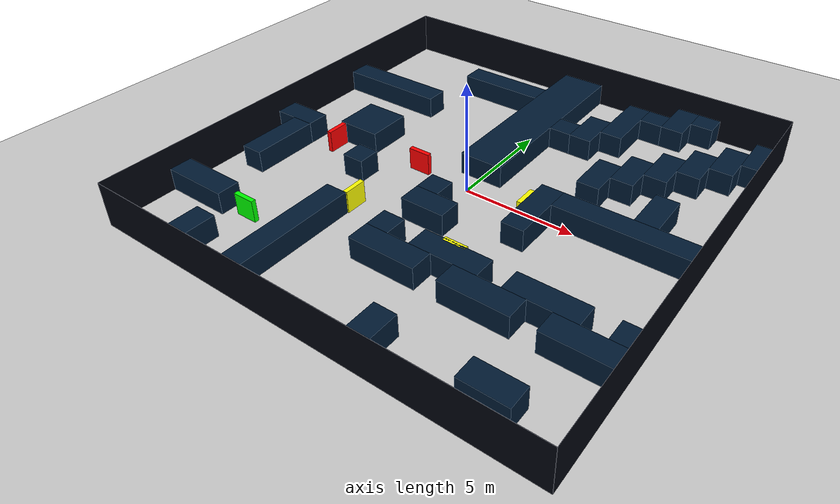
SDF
<sdf version='1.10'>
  <world name='maze'>
    <physics name='1ms' type='ignored'>
      <max_step_size>0.0030000000000000001</max_step_size>
      <real_time_factor>1</real_time_factor>
      <real_time_update_rate>1000</real_time_update_rate>
    </physics>
    <plugin name='ignition::gazebo::systems::Physics' filename='ignition-gazebo-physics-system'/>
    <plugin name='ignition::gazebo::systems::UserCommands' filename='ignition-gazebo-user-commands-system'/>
    <plugin name='ignition::gazebo::systems::SceneBroadcaster' filename='ignition-gazebo-scene-broadcaster-system'/>
    <plugin name='ignition::gazebo::systems::Contact' filename='ignition-gazebo-contact-system'/>

    <gravity>0 0 -9.8000000000000007</gravity>
    <magnetic_field>6.0000000000000002e-06 2.3e-05 -4.1999999999999998e-05</magnetic_field>
    <atmosphere type='adiabatic'/>
    <scene>
      <ambient>0.400000006 0.400000006 0.400000006 1</ambient>
      <background>0.699999988 0.699999988 0.699999988 1</background>
      <shadows>true</shadows>
    </scene>
    <model name='ground_plane'>
      <static>true</static>
      <link name='link'>
        <collision name='collision'>
          <geometry>
            <plane>
              <normal>0 0 1</normal>
              <size>100 100</size>
            </plane>
          </geometry>
          <surface>
            <friction>
              <ode/>
            </friction>
            <bounce/>
            <contact/>
          </surface>
        </collision>
        <visual name='visual'>
          <geometry>
            <plane>
              <normal>0 0 1</normal>
              <size>100 100</size>
            </plane>
          </geometry>
          <material>
            <ambient>0.800000012 0.800000012 0.800000012 1</ambient>
            <diffuse>0.800000012 0.800000012 0.800000012 1</diffuse>
            <specular>0.800000012 0.800000012 0.800000012 1</specular>
          </material>
        </visual>
        <pose>0 0 0 0 0 0</pose>
        <inertial>
          <pose>0 0 0 0 0 0</pose>
          <mass>1</mass>
          <inertia>
            <ixx>1</ixx>
            <ixy>0</ixy>
            <ixz>0</ixz>
            <iyy>1</iyy>
            <iyz>0</iyz>
            <izz>1</izz>
          </inertia>
        </inertial>
        <enable_wind>false</enable_wind>
      </link>
      <pose>0 0 0 0 0 0</pose>
      <self_collide>false</self_collide>
    </model>
    <model name='border'>
      <pose>0 0 1 0 0 0</pose>
      <static>true</static>
      <link name='wall1'>
        <pose>-10.005000000000001 0 0 0 0 0</pose>
        <collision name='wall1_collision'>
          <geometry>
            <box>
              <size>0.01 20 2</size>
            </box>
          </geometry>
          <surface>
            <friction>
              <ode/>
            </friction>
            <bounce/>
            <contact/>
          </surface>
        </collision>
        <visual name='wall1_visual'>
          <geometry>
            <box>
              <size>0.01 20 2</size>
            </box>
          </geometry>
          <material>
            <ambient>0.100000001 0.100000001 0.100000001 1</ambient>
            <diffuse>0 0.00999999978 0.0500000007 1</diffuse>
            <specular>0 0.00999999978 0.0500000007 1</specular>
          </material>
        </visual>
        <inertial>
          <pose>0 0 0 0 0 0</pose>
          <mass>1</mass>
          <inertia>
            <ixx>1</ixx>
            <ixy>0</ixy>
            <ixz>0</ixz>
            <iyy>1</iyy>
            <iyz>0</iyz>
            <izz>1</izz>
          </inertia>
        </inertial>
        <enable_wind>false</enable_wind>
        <static>true</static>
      </link>
      <link name='wall2'>
        <pose>10.005000000000001 0 0 0 0 0</pose>
        <collision name='wall2_collision'>
          <geometry>
            <box>
              <size>0.01 20 2</size>
            </box>
          </geometry>
          <surface>
            <friction>
              <ode/>
            </friction>
            <bounce/>
            <contact/>
          </surface>
        </collision>
        <visual name='wall2_visual'>
          <geometry>
            <box>
              <size>0.01 20 2</size>
            </box>
          </geometry>
          <material>
            <ambient>0.100000001 0.100000001 0.100000001 1</ambient>
            <diffuse>0 0.00999999978 0.0500000007 1</diffuse>
            <specular>0 0.00999999978 0.0500000007 1</specular>
          </material>
        </visual>
        <inertial>
          <pose>0 0 0 0 0 0</pose>
          <mass>1</mass>
          <inertia>
            <ixx>1</ixx>
            <ixy>0</ixy>
            <ixz>0</ixz>
            <iyy>1</iyy>
            <iyz>0</iyz>
            <izz>1</izz>
          </inertia>
        </inertial>
        <enable_wind>false</enable_wind>
        <static>true</static>
      </link>
      <link name='wall3'>
        <pose>0 10.005000000000001 0 0 0 0</pose>
        <collision name='wall3_collision'>
          <geometry>
            <box>
              <size>20 0.01 2</size>
            </box>
          </geometry>
          <surface>
            <friction>
              <ode/>
            </friction>
            <bounce/>
            <contact/>
          </surface>
        </collision>
        <visual name='wall3_visual'>
          <geometry>
            <box>
              <size>20 0.01 2</size>
            </box>
          </geometry>
          <material>
            <ambient>0.100000001 0.100000001 0.100000001 1</ambient>
            <diffuse>0 0.00999999978 0.0500000007 1</diffuse>
            <specular>0 0.00999999978 0.0500000007 1</specular>
          </material>
        </visual>
        <inertial>
          <pose>0 0 0 0 0 0</pose>
          <mass>1</mass>
          <inertia>
            <ixx>1</ixx>
            <ixy>0</ixy>
            <ixz>0</ixz>
            <iyy>1</iyy>
            <iyz>0</iyz>
            <izz>1</izz>
          </inertia>
        </inertial>
        <enable_wind>false</enable_wind>
        <static>true</static>
      </link>
      <link name='wall4'>
        <pose>0 -10.005000000000001 0 0 0 0</pose>
        <collision name='wall4_collision'>
          <geometry>
            <box>
              <size>20 0.01 2</size>
            </box>
          </geometry>
          <surface>
            <friction>
              <ode/>
            </friction>
            <bounce/>
            <contact/>
          </surface>
          <material>
            <ambient>0.1 0.1 0.1 1</ambient>
            <diffuse>0 0.01 0.05 1</diffuse>
            <specular>0 0.01 0.05 1</specular>
          </material>
        </collision>
        <visual name='wall4_visual'>
          <geometry>
            <box>
              <size>20 0.01 2</size>
            </box>
          </geometry>
          <material>
            <ambient>0.100000001 0.100000001 0.100000001 1</ambient>
            <diffuse>0 0.00999999978 0.0500000007 1</diffuse>
            <specular>0 0.00999999978 0.0500000007 1</specular>
          </material>
        </visual>
        <inertial>
          <pose>0 0 0 0 0 0</pose>
          <mass>1</mass>
          <inertia>
            <ixx>1</ixx>
            <ixy>0</ixy>
            <ixz>0</ixz>
            <iyy>1</iyy>
            <iyz>0</iyz>
            <izz>1</izz>
          </inertia>
        </inertial>
        <enable_wind>false</enable_wind>
        <static>true</static>
      </link>
      <self_collide>false</self_collide>
    </model>
    <model name='obstacles'>
      <pose>0 0 0.5 0 0 0</pose>
      <static>true</static>
      <link name='wall1'>
        <pose>-6.5 -9 0 0 0 0</pose>
        <collision name='wall1_collision'>
          <geometry>
            <box>
              <size>1 2 1</size>
            </box>
          </geometry>
          <surface>
            <friction>
              <ode/>
            </friction>
            <bounce/>
            <contact/>
          </surface>
        </collision>
        <visual name='wall1_visual'>
          <geometry>
            <box>
              <size>1 2 1</size>
            </box>
          </geometry>
          <material>
            <ambient>0.100000001 0.100000001 0.100000001 1</ambient>
            <diffuse>0 0.100000001 0.200000003 1</diffuse>
            <specular>0 0.00999999978 0.0500000007 1</specular>
          </material>
        </visual>
        <inertial>
          <pose>0 0 0 0 0 0</pose>
          <mass>1</mass>
          <inertia>
            <ixx>1</ixx>
            <ixy>0</ixy>
            <ixz>0</ixz>
            <iyy>1</iyy>
            <iyz>0</iyz>
            <izz>1</izz>
          </inertia>
        </inertial>
        <enable_wind>false</enable_wind>
        <static>true</static>
      </link>
      <link name='wall2'>
        <pose>-8.5 -6.5 0 0 0 0</pose>
        <collision name='wall2_collision'>
          <geometry>
            <box>
              <size>3 1 1</size>
            </box>
          </geometry>
          <surface>
            <friction>
              <ode/>
            </friction>
            <bounce/>
            <contact/>
          </surface>
        </collision>
        <visual name='wall2_visual'>
          <geometry>
            <box>
              <size>3 1 1</size>
            </box>
          </geometry>
          <material>
            <ambient>0.100000001 0.100000001 0.100000001 1</ambient>
            <diffuse>0 0.100000001 0.200000003 1</diffuse>
            <specular>0 0.00999999978 0.0500000007 1</specular>
          </material>
        </visual>
        <inertial>
          <pose>0 0 0 0 0 0</pose>
          <mass>1</mass>
          <inertia>
            <ixx>1</ixx>
            <ixy>0</ixy>
            <ixz>0</ixz>
            <iyy>1</iyy>
            <iyz>0</iyz>
            <izz>1</izz>
          </inertia>
        </inertial>
        <enable_wind>false</enable_wind>
        <static>true</static>
      </link>
      <link name='wall3'>
        <pose>-3.5 -7 0 0 0 0</pose>
        <collision name='wall3_collision'>
          <geometry>
            <box>
              <size>1 6 1</size>
            </box>
          </geometry>
          <surface>
            <friction>
              <ode/>
            </friction>
            <bounce/>
            <contact/>
          </surface>
        </collision>
        <visual name='wall3_visual'>
          <geometry>
            <box>
              <size>1 6 1</size>
            </box>
          </geometry>
          <material>
            <ambient>0.100000001 0.100000001 0.100000001 1</ambient>
            <diffuse>0 0.100000001 0.200000003 1</diffuse>
            <specular>0 0.00999999978 0.0500000007 1</specular>
          </material>
        </visual>
        <inertial>
          <pose>0 0 0 0 0 0</pose>
          <mass>1</mass>
          <inertia>
            <ixx>1</ixx>
            <ixy>0</ixy>
            <ixz>0</ixz>
            <iyy>1</iyy>
            <iyz>0</iyz>
            <izz>1</izz>
          </inertia>
        </inertial>
        <enable_wind>false</enable_wind>
        <static>true</static>
      </link>
      <link name='wall4'>
        <pose>2.5 -9 0 0 0 0</pose>
        <collision name='wall4_collision'>
          <geometry>
            <box>
              <size>1 2 1</size>
            </box>
          </geometry>
          <surface>
            <friction>
              <ode/>
            </friction>
            <bounce/>
            <contact/>
          </surface>
        </collision>
        <visual name='wall4_visual'>
          <geometry>
            <box>
              <size>1 2 1</size>
            </box>
          </geometry>
          <material>
            <ambient>0.100000001 0.100000001 0.100000001 1</ambient>
            <diffuse>0 0.100000001 0.200000003 1</diffuse>
            <specular>0 0.00999999978 0.0500000007 1</specular>
          </material>
        </visual>
        <inertial>
          <pose>0 0 0 0 0 0</pose>
          <mass>1</mass>
          <inertia>
            <ixx>1</ixx>
            <ixy>0</ixy>
            <ixz>0</ixz>
            <iyy>1</iyy>
            <iyz>0</iyz>
            <izz>1</izz>
          </inertia>
        </inertial>
        <enable_wind>false</enable_wind>
        <static>true</static>
      </link>
      <link name='wall5'>
        <pose>7 -8.5 0 0 0 0</pose>
        <collision name='wall5_collision'>
          <geometry>
            <box>
              <size>2 1 1</size>
            </box>
          </geometry>
          <surface>
            <friction>
              <ode/>
            </friction>
            <bounce/>
            <contact/>
          </surface>
        </collision>
        <visual name='wall5_visual'>
          <geometry>
            <box>
              <size>2 1 1</size>
            </box>
          </geometry>
          <material>
            <ambient>0.100000001 0.100000001 0.100000001 1</ambient>
            <diffuse>0 0.100000001 0.200000003 1</diffuse>
            <specular>0 0.00999999978 0.0500000007 1</specular>
          </material>
        </visual>
        <inertial>
          <pose>0 0 0 0 0 0</pose>
          <mass>1</mass>
          <inertia>
            <ixx>1</ixx>
            <ixy>0</ixy>
            <ixz>0</ixz>
            <iyy>1</iyy>
            <iyz>0</iyz>
            <izz>1</izz>
          </inertia>
        </inertial>
        <enable_wind>false</enable_wind>
        <static>true</static>
      </link>
      <link name='wall6'>
        <pose>-9 -0.5 0 0 0 0</pose>
        <collision name='wall6_collision'>
          <geometry>
            <box>
              <size>2 1 1</size>
            </box>
          </geometry>
          <surface>
            <friction>
              <ode/>
            </friction>
            <bounce/>
            <contact/>
          </surface>
        </collision>
        <visual name='wall6_visual'>
          <geometry>
            <box>
              <size>2 1 1</size>
            </box>
          </geometry>
          <material>
            <ambient>0.100000001 0.100000001 0.100000001 1</ambient>
            <diffuse>0 0.100000001 0.200000003 1</diffuse>
            <specular>0 0.00999999978 0.0500000007 1</specular>
          </material>
        </visual>
        <inertial>
          <pose>0 0 0 0 0 0</pose>
          <mass>1</mass>
          <inertia>
            <ixx>1</ixx>
            <ixy>0</ixy>
            <ixz>0</ixz>
            <iyy>1</iyy>
            <iyz>0</iyz>
            <izz>1</izz>
          </inertia>
        </inertial>
        <enable_wind>false</enable_wind>
        <static>true</static>
      </link>
      <link name='wall7'>
        <pose>-8.5 -2.5 0 0 0 0</pose>
        <collision name='wall7_collision'>
          <geometry>
            <box>
              <size>1 3 1</size>
            </box>
          </geometry>
          <surface>
            <friction>
              <ode/>
            </friction>
            <bounce/>
            <contact/>
          </surface>
        </collision>
        <visual name='wall7_visual'>
          <geometry>
            <box>
              <size>1 3 1</size>
            </box>
          </geometry>
          <material>
            <ambient>0.100000001 0.100000001 0.100000001 1</ambient>
            <diffuse>0 0.100000001 0.200000003 1</diffuse>
            <specular>0 0.00999999978 0.0500000007 1</specular>
          </material>
        </visual>
        <inertial>
          <pose>0 0 0 0 0 0</pose>
          <mass>1</mass>
          <inertia>
            <ixx>1</ixx>
            <ixy>0</ixy>
            <ixz>0</ixz>
            <iyy>1</iyy>
            <iyz>0</iyz>
            <izz>1</izz>
          </inertia>
        </inertial>
        <enable_wind>false</enable_wind>
        <static>true</static>
      </link>
      <link name='wall8'>
        <pose>-4.5 -1.5 0 0 0 0</pose>
        <collision name='wall8_collision'>
          <geometry>
            <box>
              <size>1 1 1</size>
            </box>
          </geometry>
          <surface>
            <friction>
              <ode/>
            </friction>
            <bounce/>
            <contact/>
          </surface>
        </collision>
        <visual name='wall8_visual'>
          <geometry>
            <box>
              <size>1 1 1</size>
            </box>
          </geometry>
          <material>
            <ambient>0.100000001 0.100000001 0.100000001 1</ambient>
            <diffuse>0 0.100000001 0.200000003 1</diffuse>
            <specular>0 0.00999999978 0.0500000007 1</specular>
          </material>
        </visual>
        <inertial>
          <pose>0 0 0 0 0 0</pose>
          <mass>1</mass>
          <inertia>
            <ixx>1</ixx>
            <ixy>0</ixy>
            <ixz>0</ixz>
            <iyy>1</iyy>
            <iyz>0</iyz>
            <izz>1</izz>
          </inertia>
        </inertial>
        <enable_wind>false</enable_wind>
        <static>true</static>
      </link>
      <link name='wall9'>
        <pose>-6 1 0 0 0 0</pose>
        <collision name='wall9_collision'>
          <geometry>
            <box>
              <size>2 2 1</size>
            </box>
          </geometry>
          <surface>
            <friction>
              <ode/>
            </friction>
            <bounce/>
            <contact/>
          </surface>
        </collision>
        <visual name='wall9_visual'>
          <geometry>
            <box>
              <size>2 2 1</size>
            </box>
          </geometry>
          <material>
            <ambient>0.100000001 0.100000001 0.100000001 1</ambient>
            <diffuse>0 0.100000001 0.200000003 1</diffuse>
            <specular>0 0.00999999978 0.0500000007 1</specular>
          </material>
        </visual>
        <inertial>
          <pose>0 0 0 0 0 0</pose>
          <mass>1</mass>
          <inertia>
            <ixx>1</ixx>
            <ixy>0</ixy>
            <ixz>0</ixz>
            <iyy>1</iyy>
            <iyz>0</iyz>
            <izz>1</izz>
          </inertia>
        </inertial>
        <enable_wind>false</enable_wind>
        <static>true</static>
      </link>
      <link name='wall10'>
        <pose>-7.5 4.5 0 0 0 0</pose>
        <collision name='wall10_collision'>
          <geometry>
            <box>
              <size>5 1 1</size>
            </box>
          </geometry>
          <surface>
            <friction>
              <ode/>
            </friction>
            <bounce/>
            <contact/>
          </surface>
        </collision>
        <visual name='wall10_visual'>
          <geometry>
            <box>
              <size>5 1 1</size>
            </box>
          </geometry>
          <material>
            <ambient>0.100000001 0.100000001 0.100000001 1</ambient>
            <diffuse>0 0.100000001 0.200000003 1</diffuse>
            <specular>0 0.00999999978 0.0500000007 1</specular>
          </material>
        </visual>
        <inertial>
          <pose>0 0 0 0 0 0</pose>
          <mass>1</mass>
          <inertia>
            <ixx>1</ixx>
            <ixy>0</ixy>
            <ixz>0</ixz>
            <iyy>1</iyy>
            <iyz>0</iyz>
            <izz>1</izz>
          </inertia>
        </inertial>
        <enable_wind>false</enable_wind>
        <static>true</static>
      </link>
      <link name='wall11'>
        <pose>-3 7.5 0 0 0 0</pose>
        <collision name='wall11_collision'>
          <geometry>
            <box>
              <size>4 1 1</size>
            </box>
          </geometry>
          <surface>
            <friction>
              <ode/>
            </friction>
            <bounce/>
            <contact/>
          </surface>
        </collision>
        <visual name='wall11_visual'>
          <geometry>
            <box>
              <size>4 1 1</size>
            </box>
          </geometry>
          <material>
            <ambient>0.100000001 0.100000001 0.100000001 1</ambient>
            <diffuse>0 0.100000001 0.200000003 1</diffuse>
            <specular>0 0.00999999978 0.0500000007 1</specular>
          </material>
        </visual>
        <inertial>
          <pose>0 0 0 0 0 0</pose>
          <mass>1</mass>
          <inertia>
            <ixx>1</ixx>
            <ixy>0</ixy>
            <ixz>0</ixz>
            <iyy>1</iyy>
            <iyz>0</iyz>
            <izz>1</izz>
          </inertia>
        </inertial>
        <enable_wind>false</enable_wind>
        <static>true</static>
      </link>
      <link name='wall12'>
        <pose>0 5.5 0 0 0 0</pose>
        <collision name='wall12_collision'>
          <geometry>
            <box>
              <size>2 9 1</size>
            </box>
          </geometry>
          <surface>
            <friction>
              <ode/>
            </friction>
            <bounce/>
            <contact/>
          </surface>
        </collision>
        <visual name='wall12_visual'>
          <geometry>
            <box>
              <size>2 9 1</size>
            </box>
          </geometry>
          <material>
            <ambient>0.100000001 0.100000001 0.100000001 1</ambient>
            <diffuse>0 0.100000001 0.200000003 1</diffuse>
            <specular>0 0.00999999978 0.0500000007 1</specular>
          </material>
        </visual>
        <inertial>
          <pose>0 0 0 0 0 0</pose>
          <mass>1</mass>
          <inertia>
            <ixx>1</ixx>
            <ixy>0</ixy>
            <ixz>0</ixz>
            <iyy>1</iyy>
            <iyz>0</iyz>
            <izz>1</izz>
          </inertia>
        </inertial>
        <enable_wind>false</enable_wind>
        <static>true</static>
      </link>
      <link name='wall13'>
        <pose>0 -2.5 0 0 0 0</pose>
        <collision name='wall13_collision'>
          <geometry>
            <box>
              <size>2 1 1</size>
            </box>
          </geometry>
          <surface>
            <friction>
              <ode/>
            </friction>
            <bounce/>
            <contact/>
          </surface>
        </collision>
        <visual name='wall13_visual'>
          <geometry>
            <box>
              <size>2 1 1</size>
            </box>
          </geometry>
          <material>
            <ambient>0.100000001 0.100000001 0.100000001 1</ambient>
            <diffuse>0 0.100000001 0.200000003 1</diffuse>
            <specular>0 0.00999999978 0.0500000007 1</specular>
          </material>
        </visual>
        <inertial>
          <pose>0 0 0 0 0 0</pose>
          <mass>1</mass>
          <inertia>
            <ixx>1</ixx>
            <ixy>0</ixy>
            <ixz>0</ixz>
            <iyy>1</iyy>
            <iyz>0</iyz>
            <izz>1</izz>
          </inertia>
        </inertial>
        <enable_wind>false</enable_wind>
        <static>true</static>
      </link>
      <link name='wall14'>
        <pose>-0.5 -1.5 0 0 0 0</pose>
        <collision name='wall14_collision'>
          <geometry>
            <box>
              <size>1 1 1</size>
            </box>
          </geometry>
          <surface>
            <friction>
              <ode/>
            </friction>
            <bounce/>
            <contact/>
          </surface>
        </collision>
        <visual name='wall14_visual'>
          <geometry>
            <box>
              <size>1 1 1</size>
            </box>
          </geometry>
          <material>
            <ambient>0.100000001 0.100000001 0.100000001 1</ambient>
            <diffuse>0 0.100000001 0.200000003 1</diffuse>
            <specular>0 0.00999999978 0.0500000007 1</specular>
          </material>
        </visual>
        <inertial>
          <pose>0 0 0 0 0 0</pose>
          <mass>1</mass>
          <inertia>
            <ixx>1</ixx>
            <ixy>0</ixy>
            <ixz>0</ixz>
            <iyy>1</iyy>
            <iyz>0</iyz>
            <izz>1</izz>
          </inertia>
        </inertial>
        <enable_wind>false</enable_wind>
        <static>true</static>
      </link>
      <link name='wall15'>
        <pose>-0.5 -4.5 0 0 0 0</pose>
        <collision name='wall15_collision'>
          <geometry>
            <box>
              <size>1 1 1</size>
            </box>
          </geometry>
          <surface>
            <friction>
              <ode/>
            </friction>
            <bounce/>
            <contact/>
          </surface>
        </collision>
        <visual name='wall15_visual'>
          <geometry>
            <box>
              <size>1 1 1</size>
            </box>
          </geometry>
          <material>
            <ambient>0.100000001 0.100000001 0.100000001 1</ambient>
            <diffuse>0 0.100000001 0.200000003 1</diffuse>
            <specular>0 0.00999999978 0.0500000007 1</specular>
          </material>
        </visual>
        <inertial>
          <pose>0 0 0 0 0 0</pose>
          <mass>1</mass>
          <inertia>
            <ixx>1</ixx>
            <ixy>0</ixy>
            <ixz>0</ixz>
            <iyy>1</iyy>
            <iyz>0</iyz>
            <izz>1</izz>
          </inertia>
        </inertial>
        <enable_wind>false</enable_wind>
        <static>true</static>
      </link>
      <link name='wall16'>
        <pose>0.5 -5.5 0 0 0 0</pose>
        <collision name='wall16_collision'>
          <geometry>
            <box>
              <size>3 1 1</size>
            </box>
          </geometry>
          <surface>
            <friction>
              <ode/>
            </friction>
            <bounce/>
            <contact/>
          </surface>
        </collision>
        <visual name='wall16_visual'>
          <geometry>
            <box>
              <size>3 1 1</size>
            </box>
          </geometry>
          <material>
            <ambient>0.100000001 0.100000001 0.100000001 1</ambient>
            <diffuse>0 0.100000001 0.200000003 1</diffuse>
            <specular>0 0.00999999978 0.0500000007 1</specular>
          </material>
        </visual>
        <inertial>
          <pose>0 0 0 0 0 0</pose>
          <mass>1</mass>
          <inertia>
            <ixx>1</ixx>
            <ixy>0</ixy>
            <ixz>0</ixz>
            <iyy>1</iyy>
            <iyz>0</iyz>
            <izz>1</izz>
          </inertia>
        </inertial>
        <enable_wind>false</enable_wind>
        <static>true</static>
      </link>
      <link name='wall17'>
        <pose>2.5 -4.5 0 0 0 0</pose>
        <collision name='wall17_collision'>
          <geometry>
            <box>
              <size>3 1 1</size>
            </box>
          </geometry>
          <surface>
            <friction>
              <ode/>
            </friction>
            <bounce/>
            <contact/>
          </surface>
        </collision>
        <visual name='wall17_visual'>
          <geometry>
            <box>
              <size>3 1 1</size>
            </box>
          </geometry>
          <material>
            <ambient>0.100000001 0.100000001 0.100000001 1</ambient>
            <diffuse>0 0.100000001 0.200000003 1</diffuse>
            <specular>0 0.00999999978 0.0500000007 1</specular>
          </material>
        </visual>
        <inertial>
          <pose>0 0 0 0 0 0</pose>
          <mass>1</mass>
          <inertia>
            <ixx>1</ixx>
            <ixy>0</ixy>
            <ixz>0</ixz>
            <iyy>1</iyy>
            <iyz>0</iyz>
            <izz>1</izz>
          </inertia>
        </inertial>
        <enable_wind>false</enable_wind>
        <static>true</static>
      </link>
      <link name='wall18'>
        <pose>4.5 -5.5 0 0 0 0</pose>
        <collision name='wall18_collision'>
          <geometry>
            <box>
              <size>3 1 1</size>
            </box>
          </geometry>
          <surface>
            <friction>
              <ode/>
            </friction>
            <bounce/>
            <contact/>
          </surface>
        </collision>
        <visual name='wall18_visual'>
          <geometry>
            <box>
              <size>3 1 1</size>
            </box>
          </geometry>
          <material>
            <ambient>0.100000001 0.100000001 0.100000001 1</ambient>
            <diffuse>0 0.100000001 0.200000003 1</diffuse>
            <specular>0 0.00999999978 0.0500000007 1</specular>
          </material>
        </visual>
        <inertial>
          <pose>0 0 0 0 0 0</pose>
          <mass>1</mass>
          <inertia>
            <ixx>1</ixx>
            <ixy>0</ixy>
            <ixz>0</ixz>
            <iyy>1</iyy>
            <iyz>0</iyz>
            <izz>1</izz>
          </inertia>
        </inertial>
        <enable_wind>false</enable_wind>
        <static>true</static>
      </link>
      <link name='wall19'>
        <pose>6.5 -4.5 0 0 0 0</pose>
        <collision name='wall19_collision'>
          <geometry>
            <box>
              <size>3 1 1</size>
            </box>
          </geometry>
          <surface>
            <friction>
              <ode/>
            </friction>
            <bounce/>
            <contact/>
          </surface>
        </collision>
        <visual name='wall19_visual'>
          <geometry>
            <box>
              <size>3 1 1</size>
            </box>
          </geometry>
          <material>
            <ambient>0.100000001 0.100000001 0.100000001 1</ambient>
            <diffuse>0 0.100000001 0.200000003 1</diffuse>
            <specular>0 0.00999999978 0.0500000007 1</specular>
          </material>
        </visual>
        <inertial>
          <pose>0 0 0 0 0 0</pose>
          <mass>1</mass>
          <inertia>
            <ixx>1</ixx>
            <ixy>0</ixy>
            <ixz>0</ixz>
            <iyy>1</iyy>
            <iyz>0</iyz>
            <izz>1</izz>
          </inertia>
        </inertial>
        <enable_wind>false</enable_wind>
        <static>true</static>
      </link>
      <link name='wall20'>
        <pose>8.5 -5.5 0 0 0 0</pose>
        <collision name='wall20_collision'>
          <geometry>
            <box>
              <size>3 1 1</size>
            </box>
          </geometry>
          <surface>
            <friction>
              <ode/>
            </friction>
            <bounce/>
            <contact/>
          </surface>
        </collision>
        <visual name='wall20_visual'>
          <geometry>
            <box>
              <size>3 1 1</size>
            </box>
          </geometry>
          <material>
            <ambient>0.100000001 0.100000001 0.100000001 1</ambient>
            <diffuse>0 0.100000001 0.200000003 1</diffuse>
            <specular>0 0.00999999978 0.0500000007 1</specular>
          </material>
        </visual>
        <inertial>
          <pose>0 0 0 0 0 0</pose>
          <mass>1</mass>
          <inertia>
            <ixx>1</ixx>
            <ixy>0</ixy>
            <ixz>0</ixz>
            <iyy>1</iyy>
            <iyz>0</iyz>
            <izz>1</izz>
          </inertia>
        </inertial>
        <enable_wind>false</enable_wind>
        <static>true</static>
      </link>
      <link name='wall21'>
        <pose>9.5 -4.5 0 0 0 0</pose>
        <collision name='wall21_collision'>
          <geometry>
            <box>
              <size>1 1 1</size>
            </box>
          </geometry>
          <surface>
            <friction>
              <ode/>
            </friction>
            <bounce/>
            <contact/>
          </surface>
        </collision>
        <visual name='wall21_visual'>
          <geometry>
            <box>
              <size>1 1 1</size>
            </box>
          </geometry>
          <material>
            <ambient>0.100000001 0.100000001 0.100000001 1</ambient>
            <diffuse>0 0.100000001 0.200000003 1</diffuse>
            <specular>0 0.00999999978 0.0500000007 1</specular>
          </material>
        </visual>
        <inertial>
          <pose>0 0 0 0 0 0</pose>
          <mass>1</mass>
          <inertia>
            <ixx>1</ixx>
            <ixy>0</ixy>
            <ixz>0</ixz>
            <iyy>1</iyy>
            <iyz>0</iyz>
            <izz>1</izz>
          </inertia>
        </inertial>
        <enable_wind>false</enable_wind>
        <static>true</static>
      </link>
      <link name='wall22'>
        <pose>3.5 -0.5 0 0 0 0</pose>
        <collision name='wall22_collision'>
          <geometry>
            <box>
              <size>1 3 1</size>
            </box>
          </geometry>
          <surface>
            <friction>
              <ode/>
            </friction>
            <bounce/>
            <contact/>
          </surface>
        </collision>
        <visual name='wall22_visual'>
          <geometry>
            <box>
              <size>1 3 1</size>
            </box>
          </geometry>
          <material>
            <ambient>0.100000001 0.100000001 0.100000001 1</ambient>
            <diffuse>0 0.100000001 0.200000003 1</diffuse>
            <specular>0 0.00999999978 0.0500000007 1</specular>
          </material>
        </visual>
        <inertial>
          <pose>0 0 0 0 0 0</pose>
          <mass>1</mass>
          <inertia>
            <ixx>1</ixx>
            <ixy>0</ixy>
            <ixz>0</ixz>
            <iyy>1</iyy>
            <iyz>0</iyz>
            <izz>1</izz>
          </inertia>
        </inertial>
        <enable_wind>false</enable_wind>
        <static>true</static>
      </link>
      <link name='wall23'>
        <pose>7 0.5 0 0 0 0</pose>
        <collision name='wall23_collision'>
          <geometry>
            <box>
              <size>6 1 1</size>
            </box>
          </geometry>
          <surface>
            <friction>
              <ode/>
            </friction>
            <bounce/>
            <contact/>
          </surface>
        </collision>
        <visual name='wall23_visual'>
          <geometry>
            <box>
              <size>6 1 1</size>
            </box>
          </geometry>
          <material>
            <ambient>0.100000001 0.100000001 0.100000001 1</ambient>
            <diffuse>0 0.100000001 0.200000003 1</diffuse>
            <specular>0 0.00999999978 0.0500000007 1</specular>
          </material>
        </visual>
        <inertial>
          <pose>0 0 0 0 0 0</pose>
          <mass>1</mass>
          <inertia>
            <ixx>1</ixx>
            <ixy>0</ixy>
            <ixz>0</ixz>
            <iyy>1</iyy>
            <iyz>0</iyz>
            <izz>1</izz>
          </inertia>
        </inertial>
        <enable_wind>false</enable_wind>
        <static>true</static>
      </link>
      <link name='wall24'>
        <pose>7.5 2 0 0 0 0</pose>
        <collision name='wall24_collision'>
          <geometry>
            <box>
              <size>1 2 1</size>
            </box>
          </geometry>
          <surface>
            <friction>
              <ode/>
            </friction>
            <bounce/>
            <contact/>
          </surface>
        </collision>
        <visual name='wall24_visual'>
          <geometry>
            <box>
              <size>1 2 1</size>
            </box>
          </geometry>
          <material>
            <ambient>0.100000001 0.100000001 0.100000001 1</ambient>
            <diffuse>0 0.100000001 0.200000003 1</diffuse>
            <specular>0 0.00999999978 0.0500000007 1</specular>
          </material>
        </visual>
        <inertial>
          <pose>0 0 0 0 0 0</pose>
          <mass>1</mass>
          <inertia>
            <ixx>1</ixx>
            <ixy>0</ixy>
            <ixz>0</ixz>
            <iyy>1</iyy>
            <iyz>0</iyz>
            <izz>1</izz>
          </inertia>
        </inertial>
        <enable_wind>false</enable_wind>
        <static>true</static>
      </link>
      <link name='wall25'>
        <pose>1.5 5.5 0 0 0 0</pose>
        <collision name='wall25_collision'>
          <geometry>
            <box>
              <size>1 1 1</size>
            </box>
          </geometry>
          <surface>
            <friction>
              <ode/>
            </friction>
            <bounce/>
            <contact/>
          </surface>
        </collision>
        <visual name='wall25_visual'>
          <geometry>
            <box>
              <size>1 1 1</size>
            </box>
          </geometry>
          <material>
            <ambient>0.100000001 0.100000001 0.100000001 1</ambient>
            <diffuse>0 0.100000001 0.200000003 1</diffuse>
            <specular>0 0.00999999978 0.0500000007 1</specular>
          </material>
        </visual>
        <inertial>
          <pose>0 0 0 0 0 0</pose>
          <mass>1</mass>
          <inertia>
            <ixx>1</ixx>
            <ixy>0</ixy>
            <ixz>0</ixz>
            <iyy>1</iyy>
            <iyz>0</iyz>
            <izz>1</izz>
          </inertia>
        </inertial>
        <enable_wind>false</enable_wind>
        <static>true</static>
      </link>
      <link name='wall26'>
        <pose>2.5 6 0 0 0 0</pose>
        <collision name='wall26_collision'>
          <geometry>
            <box>
              <size>1 2 1</size>
            </box>
          </geometry>
          <surface>
            <friction>
              <ode/>
            </friction>
            <bounce/>
            <contact/>
          </surface>
        </collision>
        <visual name='wall26_visual'>
          <geometry>
            <box>
              <size>1 2 1</size>
            </box>
          </geometry>
          <material>
            <ambient>0.100000001 0.100000001 0.100000001 1</ambient>
            <diffuse>0 0.100000001 0.200000003 1</diffuse>
            <specular>0 0.00999999978 0.0500000007 1</specular>
          </material>
        </visual>
        <inertial>
          <pose>0 0 0 0 0 0</pose>
          <mass>1</mass>
          <inertia>
            <ixx>1</ixx>
            <ixy>0</ixy>
            <ixz>0</ixz>
            <iyy>1</iyy>
            <iyz>0</iyz>
            <izz>1</izz>
          </inertia>
        </inertial>
        <enable_wind>false</enable_wind>
        <static>true</static>
      </link>
      <link name='wall27'>
        <pose>3.5 7.5 0 0 0 0</pose>
        <collision name='wall27_collision'>
          <geometry>
            <box>
              <size>1 3 1</size>
            </box>
          </geometry>
          <surface>
            <friction>
              <ode/>
            </friction>
            <bounce/>
            <contact/>
          </surface>
        </collision>
        <visual name='wall27_visual'>
          <geometry>
            <box>
              <size>1 3 1</size>
            </box>
          </geometry>
          <material>
            <ambient>0.100000001 0.100000001 0.100000001 1</ambient>
            <diffuse>0 0.100000001 0.200000003 1</diffuse>
            <specular>0 0.00999999978 0.0500000007 1</specular>
          </material>
        </visual>
        <inertial>
          <pose>0 0 0 0 0 0</pose>
          <mass>1</mass>
          <inertia>
            <ixx>1</ixx>
            <ixy>0</ixy>
            <ixz>0</ixz>
            <iyy>1</iyy>
            <iyz>0</iyz>
            <izz>1</izz>
          </inertia>
        </inertial>
        <enable_wind>false</enable_wind>
        <static>true</static>
      </link>
      <link name='wall28'>
        <pose>4.5 8.5 0 0 0 0</pose>
        <collision name='wall28_collision'>
          <geometry>
            <box>
              <size>1 1 1</size>
            </box>
          </geometry>
          <surface>
            <friction>
              <ode/>
            </friction>
            <bounce/>
            <contact/>
          </surface>
        </collision>
        <visual name='wall28_visual'>
          <geometry>
            <box>
              <size>1 1 1</size>
            </box>
          </geometry>
          <material>
            <ambient>0.100000001 0.100000001 0.100000001 1</ambient>
            <diffuse>0 0.100000001 0.200000003 1</diffuse>
            <specular>0 0.00999999978 0.0500000007 1</specular>
          </material>
        </visual>
        <inertial>
          <pose>0 0 0 0 0 0</pose>
          <mass>1</mass>
          <inertia>
            <ixx>1</ixx>
            <ixy>0</ixy>
            <ixz>0</ixz>
            <iyy>1</iyy>
            <iyz>0</iyz>
            <izz>1</izz>
          </inertia>
        </inertial>
        <enable_wind>false</enable_wind>
        <static>true</static>
      </link>
      <link name='wall29'>
        <pose>5.5 9 0 0 0 0</pose>
        <collision name='wall29_collision'>
          <geometry>
            <box>
              <size>1 2 1</size>
            </box>
          </geometry>
          <surface>
            <friction>
              <ode/>
            </friction>
            <bounce/>
            <contact/>
          </surface>
        </collision>
        <visual name='wall29_visual'>
          <geometry>
            <box>
              <size>1 2 1</size>
            </box>
          </geometry>
          <material>
            <ambient>0.100000001 0.100000001 0.100000001 1</ambient>
            <diffuse>0 0.100000001 0.200000003 1</diffuse>
            <specular>0 0.00999999978 0.0500000007 1</specular>
          </material>
        </visual>
        <inertial>
          <pose>0 0 0 0 0 0</pose>
          <mass>1</mass>
          <inertia>
            <ixx>1</ixx>
            <ixy>0</ixy>
            <ixz>0</ixz>
            <iyy>1</iyy>
            <iyz>0</iyz>
            <izz>1</izz>
          </inertia>
        </inertial>
        <enable_wind>false</enable_wind>
        <static>true</static>
      </link>
      <link name='wall30'>
        <pose>6.5 9.5 0 0 0 0</pose>
        <collision name='wall30_collision'>
          <geometry>
            <box>
              <size>1 1 1</size>
            </box>
          </geometry>
          <surface>
            <friction>
              <ode/>
            </friction>
            <bounce/>
            <contact/>
          </surface>
        </collision>
        <visual name='wall30_visual'>
          <geometry>
            <box>
              <size>1 1 1</size>
            </box>
          </geometry>
          <material>
            <ambient>0.100000001 0.100000001 0.100000001 1</ambient>
            <diffuse>0 0.100000001 0.200000003 1</diffuse>
            <specular>0 0.00999999978 0.0500000007 1</specular>
          </material>
        </visual>
        <inertial>
          <pose>0 0 0 0 0 0</pose>
          <mass>1</mass>
          <inertia>
            <ixx>1</ixx>
            <ixy>0</ixy>
            <ixz>0</ixz>
            <iyy>1</iyy>
            <iyz>0</iyz>
            <izz>1</izz>
          </inertia>
        </inertial>
        <enable_wind>false</enable_wind>
        <static>true</static>
      </link>
      <link name='wall31'>
        <pose>4.5 3 0 0 0 0</pose>
        <collision name='wall31_collision'>
          <geometry>
            <box>
              <size>1 2 1</size>
            </box>
          </geometry>
          <surface>
            <friction>
              <ode/>
            </friction>
            <bounce/>
            <contact/>
          </surface>
        </collision>
        <visual name='wall31_visual'>
          <geometry>
            <box>
              <size>1 2 1</size>
            </box>
          </geometry>
          <material>
            <ambient>0.100000001 0.100000001 0.100000001 1</ambient>
            <diffuse>0 0.100000001 0.200000003 1</diffuse>
            <specular>0 0.00999999978 0.0500000007 1</specular>
          </material>
        </visual>
        <inertial>
          <pose>0 0 0 0 0 0</pose>
          <mass>1</mass>
          <inertia>
            <ixx>1</ixx>
            <ixy>0</ixy>
            <ixz>0</ixz>
            <iyy>1</iyy>
            <iyz>0</iyz>
            <izz>1</izz>
          </inertia>
        </inertial>
        <enable_wind>false</enable_wind>
        <static>true</static>
      </link>
      <link name='wall32'>
        <pose>5.5 4 0 0 0 0</pose>
        <collision name='wall32_collision'>
          <geometry>
            <box>
              <size>1 2 1</size>
            </box>
          </geometry>
          <surface>
            <friction>
              <ode/>
            </friction>
            <bounce/>
            <contact/>
          </surface>
        </collision>
        <visual name='wall32_visual'>
          <geometry>
            <box>
              <size>1 2 1</size>
            </box>
          </geometry>
          <material>
            <ambient>0.100000001 0.100000001 0.100000001 1</ambient>
            <diffuse>0 0.100000001 0.200000003 1</diffuse>
            <specular>0 0.00999999978 0.0500000007 1</specular>
          </material>
        </visual>
        <inertial>
          <pose>0 0 0 0 0 0</pose>
          <mass>1</mass>
          <inertia>
            <ixx>1</ixx>
            <ixy>0</ixy>
            <ixz>0</ixz>
            <iyy>1</iyy>
            <iyz>0</iyz>
            <izz>1</izz>
          </inertia>
        </inertial>
        <enable_wind>false</enable_wind>
        <static>true</static>
      </link>
      <link name='wall33'>
        <pose>6.5 5 0 0 0 0</pose>
        <collision name='wall33_collision'>
          <geometry>
            <box>
              <size>1 2 1</size>
            </box>
          </geometry>
          <surface>
            <friction>
              <ode/>
            </friction>
            <bounce/>
            <contact/>
          </surface>
        </collision>
        <visual name='wall33_visual'>
          <geometry>
            <box>
              <size>1 2 1</size>
            </box>
          </geometry>
          <material>
            <ambient>0.100000001 0.100000001 0.100000001 1</ambient>
            <diffuse>0 0.100000001 0.200000003 1</diffuse>
            <specular>0 0.00999999978 0.0500000007 1</specular>
          </material>
        </visual>
        <inertial>
          <pose>0 0 0 0 0 0</pose>
          <mass>1</mass>
          <inertia>
            <ixx>1</ixx>
            <ixy>0</ixy>
            <ixz>0</ixz>
            <iyy>1</iyy>
            <iyz>0</iyz>
            <izz>1</izz>
          </inertia>
        </inertial>
        <enable_wind>false</enable_wind>
        <static>true</static>
      </link>
      <link name='wall34'>
        <pose>7.5 6 0 0 0 0</pose>
        <collision name='wall34_collision'>
          <geometry>
            <box>
              <size>1 2 1</size>
            </box>
          </geometry>
          <surface>
            <friction>
              <ode/>
            </friction>
            <bounce/>
            <contact/>
          </surface>
        </collision>
        <visual name='wall34_visual'>
          <geometry>
            <box>
              <size>1 2 1</size>
            </box>
          </geometry>
          <material>
            <ambient>0.100000001 0.100000001 0.100000001 1</ambient>
            <diffuse>0 0.100000001 0.200000003 1</diffuse>
            <specular>0 0.00999999978 0.0500000007 1</specular>
          </material>
        </visual>
        <inertial>
          <pose>0 0 0 0 0 0</pose>
          <mass>1</mass>
          <inertia>
            <ixx>1</ixx>
            <ixy>0</ixy>
            <ixz>0</ixz>
            <iyy>1</iyy>
            <iyz>0</iyz>
            <izz>1</izz>
          </inertia>
        </inertial>
        <enable_wind>false</enable_wind>
        <static>true</static>
      </link>
      <link name='wall35'>
        <pose>8.5 7 0 0 0 0</pose>
        <collision name='wall35_collision'>
          <geometry>
            <box>
              <size>1 2 1</size>
            </box>
          </geometry>
          <surface>
            <friction>
              <ode/>
            </friction>
            <bounce/>
            <contact/>
          </surface>
        </collision>
        <visual name='wall35_visual'>
          <geometry>
            <box>
              <size>1 2 1</size>
            </box>
          </geometry>
          <material>
            <ambient>0.100000001 0.100000001 0.100000001 1</ambient>
            <diffuse>0 0.100000001 0.200000003 1</diffuse>
            <specular>0 0.00999999978 0.0500000007 1</specular>
          </material>
        </visual>
        <inertial>
          <pose>0 0 0 0 0 0</pose>
          <mass>1</mass>
          <inertia>
            <ixx>1</ixx>
            <ixy>0</ixy>
            <ixz>0</ixz>
            <iyy>1</iyy>
            <iyz>0</iyz>
            <izz>1</izz>
          </inertia>
        </inertial>
        <enable_wind>false</enable_wind>
        <static>true</static>
      </link>
      <link name='wall36'>
        <pose>9.5 8 0 0 0 0</pose>
        <collision name='wall36_collision'>
          <geometry>
            <box>
              <size>1 2 1</size>
            </box>
          </geometry>
          <surface>
            <friction>
              <ode/>
            </friction>
            <bounce/>
            <contact/>
          </surface>
        </collision>
        <visual name='wall36_visual'>
          <geometry>
            <box>
              <size>1 2 1</size>
            </box>
          </geometry>
          <material>
            <ambient>0.100000001 0.100000001 0.100000001 1</ambient>
            <diffuse>0 0.100000001 0.200000003 1</diffuse>
            <specular>0 0.00999999978 0.0500000007 1</specular>
          </material>
        </visual>
        <inertial>
          <pose>0 0 0 0 0 0</pose>
          <mass>1</mass>
          <inertia>
            <ixx>1</ixx>
            <ixy>0</ixy>
            <ixz>0</ixz>
            <iyy>1</iyy>
            <iyz>0</iyz>
            <izz>1</izz>
          </inertia>
        </inertial>
        <enable_wind>false</enable_wind>
        <static>true</static>
      </link>
      <self_collide>false</self_collide>
    </model>
    <model name='box'>
      <pose>2.8959999999999999 -0.077018799999999998 0.5 -2.9472999999999999e-34 0 0</pose>
      <link name='box_link'>
        <inertial>
          <inertia>
            <ixx>0.16666</ixx>
            <ixy>0</ixy>
            <ixz>0</ixz>
            <iyy>0.16666</iyy>
            <iyz>0</iyz>
            <izz>0.16666</izz>
          </inertia>
          <mass>1</mass>
          <pose>0 0 0 0 0 0</pose>
        </inertial>
        <collision name='box_collision'>
          <geometry>
            <box>
              <size>0.20000000000000001 1 1</size>
            </box>
          </geometry>
          <surface>
            <friction>
              <ode/>
            </friction>
            <bounce/>
            <contact/>
          </surface>
        </collision>
        <visual name='box_visual'>
          <geometry>
            <box>
              <size>0.20000000000000001 1 1</size>
            </box>
          </geometry>
          <material>
            <ambient>0.300000012 0.300000012 0.300000012 1</ambient>
            <diffuse>1 1 0 1</diffuse>
            <specular>1 1 1 1</specular>
          </material>
        </visual>
        <pose>0 0 0 0 0 0</pose>
        <enable_wind>false</enable_wind>
      </link>
      <static>false</static>
      <self_collide>false</self_collide>
    </model>
    <model name='box_0'>
      <pose>2.3643898963928223 -4.0118665405186809 0.49999992302419327 -1.8157877734316773e-06 1.1092941832162091e-18 4.7565431629576772e-19</pose>
      <link name='box_link'>
        <inertial>
          <inertia>
            <ixx>0.16666</ixx>
            <ixy>0</ixy>
            <ixz>0</ixz>
            <iyy>0.16666</iyy>
            <iyz>0</iyz>
            <izz>0.16666</izz>
          </inertia>
          <mass>1</mass>
          <pose>0 0 0 0 0 0</pose>
        </inertial>
        <collision name='box_collision'>
          <geometry>
            <box>
              <size>1 0.20000000000000001 1</size>
            </box>
          </geometry>
          <surface>
            <friction>
              <ode/>
            </friction>
            <bounce/>
            <contact/>
          </surface>
        </collision>
        <visual name='box_visual'>
          <geometry>
            <box>
              <size>1 0.20000000000000001 1</size>
            </box>
          </geometry>
          <material>
            <ambient>0.300000012 0.300000012 0.300000012 1</ambient>
            <diffuse>1 1 0 1</diffuse>
            <specular>1 1 1 1</specular>
          </material>
        </visual>
        <pose>0 0 0 0 0 0</pose>
        <enable_wind>false</enable_wind>
      </link>
      <static>false</static>
      <self_collide>false</self_collide>
    </model>
    <model name='box_1'>
      <pose>-3.05341 -3.4913599999999998 0.5 1.13119e-20 3.8180399999999999e-20 2.6428e-22</pose>
      <link name='box_link'>
        <inertial>
          <inertia>
            <ixx>0.16666</ixx>
            <ixy>0</ixy>
            <ixz>0</ixz>
            <iyy>0.16666</iyy>
            <iyz>0</iyz>
            <izz>0.16666</izz>
          </inertia>
          <mass>1</mass>
          <pose>0 0 0 0 0 0</pose>
        </inertial>
        <collision name='box_collision'>
          <geometry>
            <box>
              <size>0.20000000000000001 1 1</size>
            </box>
          </geometry>
          <surface>
            <friction>
              <ode/>
            </friction>
            <bounce/>
            <contact/>
          </surface>
        </collision>
        <visual name='box_visual'>
          <geometry>
            <box>
              <size>0.20000000000000001 1 1</size>
            </box>
          </geometry>
          <material>
            <ambient>0.300000012 0.300000012 0.300000012 1</ambient>
            <diffuse>1 1 0 1</diffuse>
            <specular>1 1 1 1</specular>
          </material>
        </visual>
        <pose>0 0 0 0 0 0</pose>
        <enable_wind>false</enable_wind>
      </link>
      <static>false</static>
      <self_collide>false</self_collide>
    </model>
    <model name='box_2'>
      <pose>-2.5259800000000001 0.10857799999999999 0.5 4.4408800000000003e-20 -2.2824100000000001e-21 -1.0058000000000001e-21</pose>
      <link name='box_link'>
        <inertial>
          <inertia>
            <ixx>0.16666</ixx>
            <ixy>0</ixy>
            <ixz>0</ixz>
            <iyy>0.16666</iyy>
            <iyz>0</iyz>
            <izz>0.16666</izz>
          </inertia>
          <mass>1</mass>
          <pose>0 0 0 0 0 0</pose>
        </inertial>
        <collision name='box_collision'>
          <geometry>
            <box>
              <size>1 0.20000000000000001 1</size>
            </box>
          </geometry>
          <surface>
            <friction>
              <ode/>
            </friction>
            <bounce/>
            <contact/>
          </surface>
        </collision>
        <visual name='box_visual'>
          <geometry>
            <box>
              <size>1 0.20000000000000001 1</size>
            </box>
          </geometry>
          <material>
            <ambient>0.300000012 0.300000012 0.300000012 1</ambient>
            <diffuse>1 0 0 1</diffuse>
            <specular>1 1 1 1</specular>
          </material>
        </visual>
        <pose>0 0 0 0 0 0</pose>
        <enable_wind>false</enable_wind>
      </link>
      <static>false</static>
      <self_collide>false</self_collide>
    </model>
    <model name='box_3'>
      <pose>-6.7863283157348633 -0.54154300689697266 0.5 1.1651334442946029e-35 0 0</pose>
      <link name='box_link'>
        <inertial>
          <inertia>
            <ixx>0.16666</ixx>
            <ixy>0</ixy>
            <ixz>0</ixz>
            <iyy>0.16666</iyy>
            <iyz>0</iyz>
            <izz>0.16666</izz>
          </inertia>
          <mass>1</mass>
          <pose>0 0 0 0 0 0</pose>
        </inertial>
        <collision name='box_collision'>
          <geometry>
            <box>
              <size>0.20000000000000001 1 1</size>
            </box>
          </geometry>
          <surface>
            <friction>
              <ode/>
            </friction>
            <bounce/>
            <contact/>
          </surface>
        </collision>
        <visual name='box_visual'>
          <geometry>
            <box>
              <size>0.20000000000000001 1 1</size>
            </box>
          </geometry>
          <material>
            <ambient>0.300000012 0.300000012 0.300000012 1</ambient>
            <diffuse>1 0 0 1</diffuse>
            <specular>1 1 1 1</specular>
          </material>
        </visual>
        <pose>0 0 0 0 0 0</pose>
        <enable_wind>false</enable_wind>
      </link>
      <static>false</static>
      <self_collide>false</self_collide>
    </model>
    <model name='box_4'>
      <pose>-6.0221400000000003 -6.5091099999999997 0.5 0 0 0</pose>
      <link name='box_link'>
        <inertial>
          <inertia>
            <ixx>0.16666</ixx>
            <ixy>0</ixy>
            <ixz>0</ixz>
            <iyy>0.16666</iyy>
            <iyz>0</iyz>
            <izz>0.16666</izz>
          </inertia>
          <mass>1</mass>
          <pose>0 0 0 0 0 0</pose>
        </inertial>
        <collision name='box_collision'>
          <geometry>
            <box>
              <size>1 0.20000000000000001 1</size>
            </box>
          </geometry>
          <surface>
            <friction>
              <ode/>
            </friction>
            <bounce/>
            <contact/>
          </surface>
        </collision>
        <visual name='box_visual'>
          <geometry>
            <box>
              <size>1 0.20000000000000001 1</size>
            </box>
          </geometry>
          <material>
            <ambient>0.300000012 0.300000012 0.300000012 1</ambient>
            <diffuse>0 1 0 1</diffuse>
            <specular>1 1 1 1</specular>
          </material>
        </visual>
        <pose>0 0 0 0 0 0</pose>
        <enable_wind>false</enable_wind>
      </link>
      <static>false</static>
      <self_collide>false</self_collide>
    </model>
    <light name='sun' type='directional'>
      <pose>0 0 10 0 0 0</pose>
      <cast_shadows>true</cast_shadows>
      <intensity>1</intensity>
      <direction>-0.5 0.10000000000000001 -0.90000000000000002</direction>
      <diffuse>0.800000012 0.800000012 0.800000012 1</diffuse>
      <specular>0.200000003 0.200000003 0.200000003 1</specular>
      <attenuation>
        <range>1000</range>
        <linear>0.0099999997764825821</linear>
        <constant>0.89999997615814209</constant>
        <quadratic>0.0010000000474974513</quadratic>
      </attenuation>
      <spot>
        <inner_angle>0</inner_angle>
        <outer_angle>0</outer_angle>
        <falloff>0</falloff>
      </spot>
    </light>
  </world>
</sdf>
